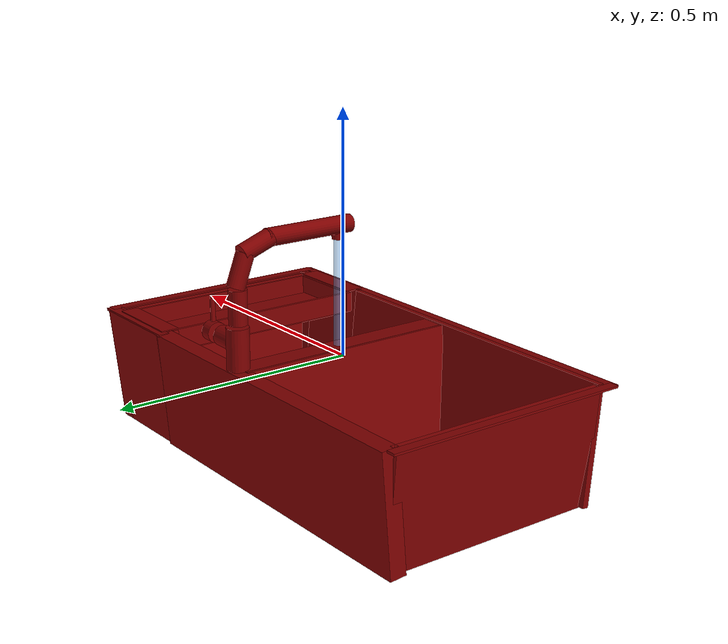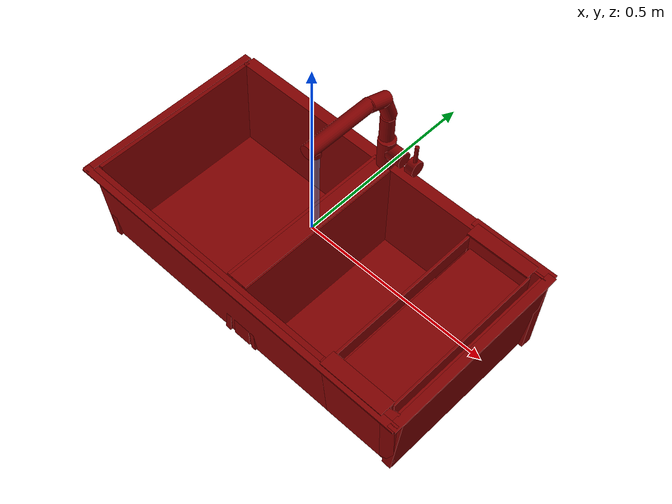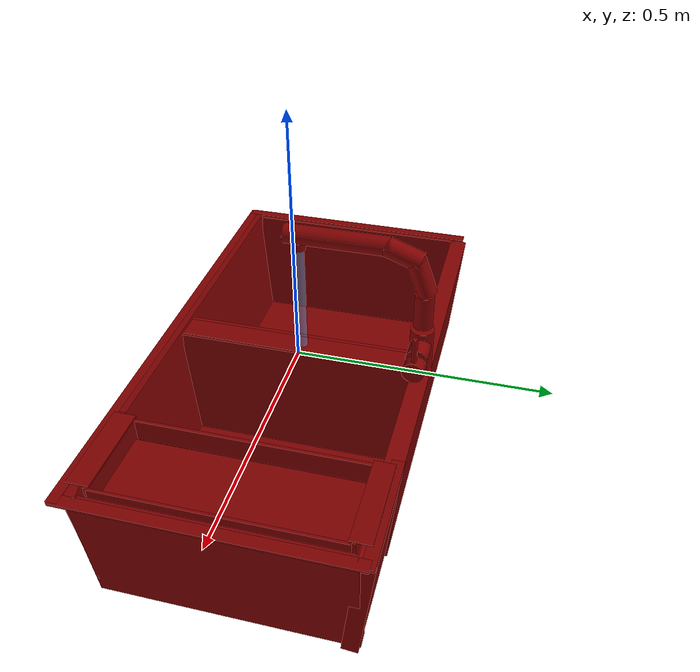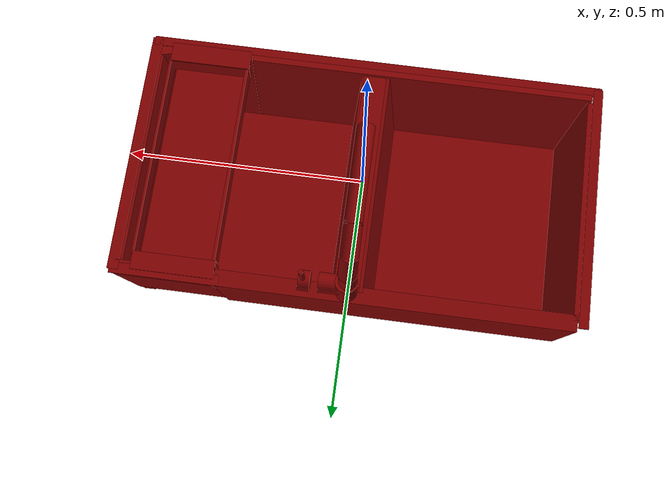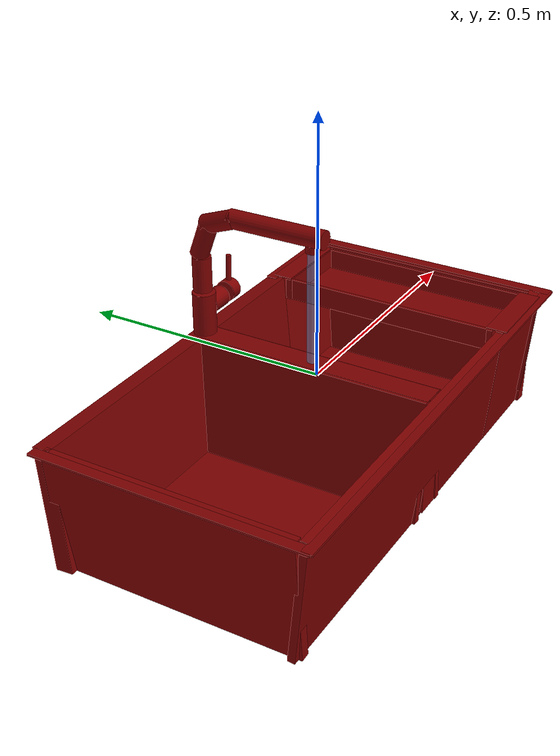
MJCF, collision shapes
<?xml version='1.0' encoding='UTF-8'?>
<mujoco model="model">
  <option timestep="0.002" gravity="0.0 0.0 -9.81"/>
  <compiler angle="radian"/>
  <asset>
    <mesh file="visuals/handle.obj" name="handle_vis"/>
    <mesh file="visuals/Body001.obj" name="Body001_vis"/>
    <mesh file="visuals/Container001.obj" name="Container001_vis"/>
    <mesh file="visuals/spout.obj" name="spout_vis"/>
    <texture file="visuals/T_BC001.png" name="Body001_material" type="2d"/>
    <material name="Body001_material" rgba="1 1 1 1.0" texture="Body001_material" shininess="0.4472135901451111" specular="2"/>
    <texture file="visuals/T_BC001.png" name="handle_material" type="2d"/>
    <material name="handle_material" rgba="1 1 1 1.0" texture="handle_material" shininess="0.4472135901451111" specular="2"/>
    <texture file="visuals/T_BC001.png" name="Container001_material" type="2d"/>
    <material name="Container001_material" rgba="1 1 1 1.0" texture="Container001_material" shininess="0.4472135901451111" specular="2"/>
    <texture file="visuals/T_BC001.png" name="spout_material" type="2d"/>
    <material name="spout_material" rgba="1 1 1 1.0" texture="spout_material" shininess="0.4472135901451111" specular="2"/>
  </asset>
  <default>
    <default class="visual">
      <geom conaffinity="0" contype="0" group="1" type="mesh"/>
    </default>
    <default class="collision">
      <geom group="0" rgba="0.5 0 0 0.5" solimp="0.998 0.998 0.001" solref="0.001 2"/>
    </default>
    <default class="spawn">
      <geom group="0" rgba="1 1 1 0.5" contype="0" conaffinity="0"/>
      <site group="0" rgba="1 1 1 0.5"/>
    </default>
    <default class="region">
      <geom group="1" conaffinity="0" contype="0" rgba="0 1 0 0"/>
    </default>
  </default>
  <worldbody>
    <body>
      <body name="object">
        <geom mesh="Body001_vis" type="mesh" solimp="0.998 0.998 0.001" solref="0.001 1" friction="0.95 0.3 0.1" class="visual" material="Body001_material"/>
        <geom class="collision" type="box" pos="-0.09733528 0.24096072 -0.09907246" size="0.3727695345878601 0.017321495339274406 0.12300393730401993" quat="0.9990482330322266 -0.04361938312649727 -0.0 0.0"/>
        <geom class="collision" type="box" pos="-0.09957722 -0.23244750 -0.09654858" size="0.37052756547927856 0.007144593633711338 0.12283506244421005" quat="0.9987403750419617 0.05017663910984993 0.0 0.0"/>
        <geom class="collision" type="box" pos="0.00122067 0.00568839 -0.09344882" size="0.024436986073851585 0.23936474323272705 0.11840010434389114" quat="1.0 0.0 0.0 0.0"/>
        <geom class="collision" type="box" pos="-0.45927498 0.00568839 -0.09785312" size="0.23936714231967926 0.009068615734577179 0.12248902767896652" quat="0.7063643336296082 0.03239481896162033 -0.032394833862781525 -0.7063643336296082"/>
        <geom class="collision" type="box" pos="0.46855363 0.00568839 -0.09967011" size="0.23936714231967926 0.012515637092292309 0.1218361184000969" quat="0.7064337730407715 -0.030843568965792656 0.030843574553728104 -0.7064337730407715"/>
        <geom class="collision" type="box" pos="-0.24464411 0.00071127 -0.21517713" size="0.19713054597377777 0.22159570455551147 0.005509738810360432" quat="1.0 0.0 0.0 0.0"/>
        <geom class="collision" type="box" pos="0.24296237 0.00071127 -0.21532134" size="0.19713057577610016 0.22159630060195923 0.005365563090890646" quat="1.0 0.0 0.0 0.0"/>
        <geom class="collision" type="box" pos="0.35772776 -0.23268879 -0.09557176" size="0.08612968027591705 0.007468333933502436 0.12335024029016495" quat="0.998741865158081 0.05014668405056 0.0 0.0"/>
        <geom class="collision" type="box" pos="0.37909644 0.24140606 -0.09870375" size="0.1026066467165947 0.015348780900239944 0.12289652973413467" quat="0.9984838366508484 -0.05504579097032547 -0.0 0.0"/>
        <geom class="collision" type="cylinder" pos="0.00231999 0.24574796 0.06544980" size="0.02263527922332287 0.04246450588107109" quat="1.0 0.0 0.0 0.0"/>
        <geom class="collision" type="box" pos="-0.03465817 0.00568839 -0.09685095" size="0.008054555393755436 0.239366352558136 0.122091144323349" quat="0.9988089203834534 0.0 0.04879241809248924 0.0"/>
        <geom class="collision" type="box" pos="0.03096597 0.00568839 -0.09618440" size="0.006487147882580757 0.239366352558136 0.1191689521074295" quat="0.9994208216667175 0.0 -0.03402908891439438 0.0"/>
        <geom class="collision" type="box" pos="0.00135944 0.00071127 -0.21735723" size="0.07363183796405792 0.2215971201658249 0.0020765289664268494" quat="1.0 0.0 0.0 0.0"/>
        <geom class="collision" type="cylinder" pos="-0.24127152 0.09563573 -0.26658598" size="0.025850877165794373 0.016773579642176628" quat="1.0 0.0 0.0 0.0"/>
        <geom class="collision" type="cylinder" pos="0.24527887 0.09563573 -0.26658595" size="0.025850877165794373 0.016773564741015434" quat="1.0 0.0 0.0 0.0"/>
        <geom class="collision" type="box" pos="0.45742267 -0.23183293 -0.08318435" size="0.017486345022916794 0.012020817957818508 0.10824259370565414" quat="0.992235541343689 0.046697646379470825 0.00944522861391306 0.1148858293890953"/>
        <geom class="collision" type="box" pos="0.00100972 -0.25945828 0.02275396" size="0.49104830622673035 0.01011129654943943 0.0021978430449962616" quat="1.0 0.0 0.0 0.0"/>
        <geom class="collision" type="box" pos="-0.48246855 -0.00231883 0.02275398" size="0.010111317038536072 0.26331180334091187 0.0021978600416332483" quat="1.0 0.0 0.0 0.0"/>
        <geom class="collision" type="box" pos="0.48481404 -0.00231883 0.02275398" size="0.011485403403639793 0.26331183314323425 0.0021978600416332483" quat="1.0 0.0 0.0 0.0"/>
        <geom class="collision" type="box" pos="-0.19974374 0.08528299 -0.23693524" size="0.001313244691118598 0.0054823001846671104 0.020730527117848396" quat="0.8857115507125854 0.09684006124734879 0.40027427673339844 -0.21428391337394714"/>
        <geom class="collision" type="box" pos="-0.20404023 0.07510709 -0.23693524" size="0.001313244691118598 0.0054823001846671104 0.020730527117848396" quat="0.8625609874725342 0.13283111155033112 0.3898119330406189 -0.29392358660697937"/>
        <geom class="collision" type="box" pos="-0.21218096 0.06572265 -0.23693524" size="0.001313244691118598 0.0054823001846671104 0.020730527117848396" quat="0.8553867936134338 0.14199042320251465 0.3865698277950287 -0.3141908645629883"/>
        <geom class="collision" type="box" pos="-0.21851263 0.05916485 -0.23693524" size="0.001313244691118598 0.0054823001846671104 0.020730527117848396" quat="0.823074221611023 0.17674292623996735 0.3719668984413147 -0.3910899758338928"/>
        <geom class="collision" type="box" pos="-0.23762072 0.05396383 -0.23693524" size="0.001313244691118598 0.0054823001846671104 0.020730527117848396" quat="0.6984293460845947 0.26451992988586426 0.31563693284988403 -0.5853195190429688"/>
        <geom class="collision" type="box" pos="-0.22642723 0.05532062 -0.23693524" size="0.001313244691118598 0.0054823001846671104 0.020730527117848396" quat="0.7480040788650513 0.23521433770656586 0.33804091811180115 -0.520473301410675"/>
        <geom class="collision" type="box" pos="-0.23183302 0.13735502 -0.23693524" size="0.001313244691118598 0.0054823001846671104 0.020730527117848396" quat="0.7815460562705994 -0.21177266538143158 0.35319942235946655 0.4686024785041809"/>
        <geom class="collision" type="box" pos="-0.22172635 0.13289804 -0.23693524" size="0.001313244691118598 0.0054823001846671104 0.020730527117848396" quat="0.8209136128425598 -0.1787833571434021 0.370990514755249 0.39560505747795105"/>
        <geom class="collision" type="box" pos="-0.21247191 0.12460986 -0.23693524" size="0.001313244691118598 0.0054823001846671104 0.020730527117848396" quat="0.8300180435180664 -0.169981449842453 0.37510499358177185 0.37612849473953247"/>
        <geom class="collision" type="box" pos="-0.20601512 0.11817522 -0.23693524" size="0.001313244691118598 0.0054823001846671104 0.020730527117848396" quat="0.860933244228363 -0.1349705010652542 0.38907670974731445 0.2986573278903961"/>
        <geom class="collision" type="box" pos="-0.20111709 0.09898723 -0.23693524" size="0.001313244691118598 0.0054823001846671104 0.020730527117848396" quat="0.9083518981933594 -0.03289860486984253 0.4105059504508972 0.07279683649539948"/>
        <geom class="collision" type="box" pos="-0.20229659 0.11020078 -0.23693524" size="0.001313244691118598 0.005482300650328398 0.020730527117848396" quat="0.8981937766075134 -0.0695001408457756 0.405915230512619 0.15378731489181519"/>
        <geom class="collision" type="box" pos="-0.28353671 0.10672168 -0.23693524" size="0.001313244691118598 0.0054823001846671104 0.020730527117848396" quat="0.21711264550685883 -0.39996278285980225 0.09811841696500778 0.8850224018096924"/>
        <geom class="collision" type="box" pos="-0.27917526 0.11686996 -0.23693524" size="0.001313244691118598 0.0054823001846671104 0.020730527117848396" quat="0.2966778874397278 -0.38938552141189575 0.1340758055448532 0.8616175651550293"/>
        <geom class="collision" type="box" pos="-0.27097473 0.12620216 -0.23693524" size="0.001313244691118598 0.0054823001846671104 0.020730527117848396" quat="0.31692206859588623 -0.3861141502857208 0.14322467148303986 0.8543787002563477"/>
        <geom class="collision" type="box" pos="-0.26460130 0.13271937 -0.23693524" size="0.0013132448075339198 0.0054823001846671104 0.020730527117848396" quat="0.3937176465988159 -0.37140023708343506 0.17793041467666626 0.8218205571174622"/>
        <geom class="collision" type="box" pos="-0.24546037 0.13779820 -0.23693524" size="0.0013132448075339198 0.0054823001846671104 0.020730527117848396" quat="0.5875478386878967 -0.3147902488708496 0.2655269205570221 0.6965559124946594"/>
        <geom class="collision" type="box" pos="-0.25666228 0.13651296 -0.23693524" size="0.001313244691118598 0.0054823001846671104 0.020730527117848396" quat="0.5228604674339294 -0.33728769421577454 0.23629315197467804 0.7463374137878418"/>
        <geom class="collision" type="box" pos="-0.25409684 0.05458775 -0.23693524" size="0.001313244691118598 0.0054823001846671104 0.020730527117848396" quat="0.4672184884548187 0.35357359051704407 0.21114712953567505 -0.7823742628097534"/>
        <geom class="collision" type="box" pos="-0.26418767 0.05908049 -0.23693524" size="0.001313244691118598 0.0054823001846671104 0.020730527117848396" quat="0.3941517472267151 0.37130630016326904 0.17812657356262207 -0.8216124176979065"/>
        <geom class="collision" type="box" pos="-0.27341268 0.06740139 -0.23693524" size="0.001313244691118598 0.0054823001846671104 0.020730527117848396" quat="0.37465900182724 0.3754052221775055 0.1693173348903656 -0.8306823372840881"/>
        <geom class="collision" type="box" pos="-0.27984670 0.07385883 -0.23693524" size="0.001313244691118598 0.0054823001846671104 0.020730527117848396" quat="0.297132670879364 0.3893146216869354 0.13428127765655518 -0.8614608645439148"/>
        <geom class="collision" type="box" pos="-0.28467677 0.09306404 -0.23693524" size="0.001313244691118598 0.0054823001846671104 0.020730527117848396" quat="0.0711892694234848 0.41056355834007263 0.03217211365699768 -0.9084792733192444"/>
        <geom class="collision" type="box" pos="-0.28353695 0.08184639 -0.23693524" size="0.001313244691118598 0.0054823001846671104 0.020730527117848396" quat="0.15219734609127045 0.4060375392436981 0.06878159195184708 -0.898464560508728"/>
        <geom class="collision" type="box" pos="-0.24519611 0.05192865 -0.23693524" size="0.001313244691118598 0.0054823001846671104 0.020730527117848396" quat="0.5495147109031677 0.3285198509693146 0.24833880364894867 -0.7269361615180969"/>
        <geom class="collision" type="box" pos="-0.23680789 0.14040779 -0.23693524" size="0.0013132448075339198 0.005482300650328398 0.020730527117848396" quat="0.6244293451309204 -0.29993945360183716 0.2821945548057556 0.6636946201324463"/>
        <geom class="collision" type="box" pos="-0.28602413 0.10152066 -0.23693524" size="0.0013132448075339198 0.0054823001846671104 0.020730527117848396" quat="0.039065562188625336 -0.4114435017108917 0.01765468530356884 0.9104264974594116"/>
        <geom class="collision" type="box" pos="-0.19838696 0.09082320 -0.23693524" size="0.0013132448075339198 0.0054823001846671104 0.020730527117848396" quat="0.9110049605369568 -0.009822927415370941 0.41170498728752136 0.02173585072159767"/>
        <geom class="collision" type="box" pos="0.28803825 0.08528299 -0.23693524" size="0.001313244691118598 0.0054823001846671104 0.020730527117848396" quat="0.8857115507125854 0.09684006124734879 0.40027427673339844 -0.21428391337394714"/>
        <geom class="collision" type="box" pos="0.28374174 0.07510709 -0.23693524" size="0.001313244691118598 0.0054823001846671104 0.020730527117848396" quat="0.8625609874725342 0.13283111155033112 0.3898119330406189 -0.29392358660697937"/>
        <geom class="collision" type="box" pos="0.27560102 0.06572265 -0.23693524" size="0.001313244691118598 0.0054823001846671104 0.020730527117848396" quat="0.8553867936134338 0.14199042320251465 0.3865698277950287 -0.3141908645629883"/>
        <geom class="collision" type="box" pos="0.26926934 0.05916485 -0.23693524" size="0.001313244691118598 0.0054823001846671104 0.020730527117848396" quat="0.823074221611023 0.17674292623996735 0.3719668984413147 -0.3910899758338928"/>
        <geom class="collision" type="box" pos="0.25016126 0.05396383 -0.23693524" size="0.001313244691118598 0.0054823001846671104 0.020730527117848396" quat="0.6984293460845947 0.26451992988586426 0.31563693284988403 -0.5853195190429688"/>
        <geom class="collision" type="box" pos="0.26135474 0.05532062 -0.23693524" size="0.001313244691118598 0.0054823001846671104 0.020730527117848396" quat="0.7480040788650513 0.23521433770656586 0.33804091811180115 -0.520473301410675"/>
        <geom class="collision" type="box" pos="0.25594896 0.13735502 -0.23693524" size="0.001313244691118598 0.0054823001846671104 0.020730527117848396" quat="0.7815460562705994 -0.21177266538143158 0.35319942235946655 0.4686024785041809"/>
        <geom class="collision" type="box" pos="0.26605564 0.13289804 -0.23693524" size="0.001313244691118598 0.0054823001846671104 0.020730527117848396" quat="0.8209136128425598 -0.1787833571434021 0.370990514755249 0.39560505747795105"/>
        <geom class="collision" type="box" pos="0.27531006 0.12460986 -0.23693524" size="0.001313244691118598 0.0054823001846671104 0.020730527117848396" quat="0.8300180435180664 -0.169981449842453 0.37510499358177185 0.37612849473953247"/>
        <geom class="collision" type="box" pos="0.28176686 0.11817522 -0.23693524" size="0.001313244691118598 0.0054823001846671104 0.020730527117848396" quat="0.860933244228363 -0.1349705010652542 0.38907670974731445 0.2986573278903961"/>
        <geom class="collision" type="box" pos="0.28666490 0.09898723 -0.23693524" size="0.001313244691118598 0.0054823001846671104 0.020730527117848396" quat="0.9083518981933594 -0.03289860486984253 0.4105059504508972 0.07279683649539948"/>
        <geom class="collision" type="box" pos="0.28548538 0.11020078 -0.23693524" size="0.001313244691118598 0.005482300650328398 0.020730527117848396" quat="0.8981937766075134 -0.0695001408457756 0.405915230512619 0.15378731489181519"/>
        <geom class="collision" type="box" pos="0.20424526 0.10672168 -0.23693524" size="0.001313244691118598 0.0054823001846671104 0.020730527117848396" quat="0.21711264550685883 -0.39996278285980225 0.09811841696500778 0.8850224018096924"/>
        <geom class="collision" type="box" pos="0.20860671 0.11686996 -0.23693524" size="0.001313244691118598 0.0054823001846671104 0.020730527117848396" quat="0.2966778874397278 -0.38938552141189575 0.1340758055448532 0.8616175651550293"/>
        <geom class="collision" type="box" pos="0.21680724 0.12620216 -0.23693524" size="0.001313244691118598 0.0054823001846671104 0.020730527117848396" quat="0.31692206859588623 -0.3861141502857208 0.14322467148303986 0.8543787002563477"/>
        <geom class="collision" type="box" pos="0.22318068 0.13271937 -0.23693524" size="0.0013132448075339198 0.0054823001846671104 0.020730527117848396" quat="0.3937176465988159 -0.37140023708343506 0.17793041467666626 0.8218205571174622"/>
        <geom class="collision" type="box" pos="0.24232161 0.13779820 -0.23693524" size="0.0013132448075339198 0.0054823001846671104 0.020730527117848396" quat="0.5875478386878967 -0.3147902488708496 0.2655269205570221 0.6965559124946594"/>
        <geom class="collision" type="box" pos="0.23111969 0.13651296 -0.23693524" size="0.001313244691118598 0.0054823001846671104 0.020730527117848396" quat="0.5228604674339294 -0.33728769421577454 0.23629315197467804 0.7463374137878418"/>
        <geom class="collision" type="box" pos="0.23368513 0.05458775 -0.23693524" size="0.001313244691118598 0.0054823001846671104 0.020730527117848396" quat="0.4672184884548187 0.35357359051704407 0.21114712953567505 -0.7823742628097534"/>
        <geom class="collision" type="box" pos="0.22359430 0.05908049 -0.23693524" size="0.001313244691118598 0.0054823001846671104 0.020730527117848396" quat="0.3941517472267151 0.37130630016326904 0.17812657356262207 -0.8216124176979065"/>
        <geom class="collision" type="box" pos="0.21436929 0.06740139 -0.23693524" size="0.001313244691118598 0.0054823001846671104 0.020730527117848396" quat="0.37465900182724 0.3754052221775055 0.1693173348903656 -0.8306823372840881"/>
        <geom class="collision" type="box" pos="0.20793527 0.07385883 -0.23693524" size="0.001313244691118598 0.0054823001846671104 0.020730527117848396" quat="0.297132670879364 0.3893146216869354 0.13428127765655518 -0.8614608645439148"/>
        <geom class="collision" type="box" pos="0.20310521 0.09306404 -0.23693524" size="0.001313244691118598 0.0054823001846671104 0.020730527117848396" quat="0.0711892694234848 0.41056355834007263 0.03217211365699768 -0.9084792733192444"/>
        <geom class="collision" type="box" pos="0.20424503 0.08184639 -0.23693524" size="0.001313244691118598 0.0054823001846671104 0.020730527117848396" quat="0.15219734609127045 0.4060375392436981 0.06878159195184708 -0.898464560508728"/>
        <geom class="collision" type="box" pos="0.24258586 0.05192865 -0.23693524" size="0.001313244691118598 0.0054823001846671104 0.020730527117848396" quat="0.5495147109031677 0.3285198509693146 0.24833880364894867 -0.7269361615180969"/>
        <geom class="collision" type="box" pos="0.25097408 0.14040779 -0.23693524" size="0.0013132448075339198 0.005482300650328398 0.020730527117848396" quat="0.6244293451309204 -0.29993945360183716 0.2821945548057556 0.6636946201324463"/>
        <geom class="collision" type="box" pos="0.20175784 0.10152066 -0.23693524" size="0.0013132448075339198 0.0054823001846671104 0.020730527117848396" quat="0.039065562188625336 -0.4114435017108917 0.01765468530356884 0.9104264974594116"/>
        <geom class="collision" type="box" pos="0.28939503 0.09082320 -0.23693524" size="0.0013132448075339198 0.0054823001846671104 0.020730527117848396" quat="0.9110049605369568 -0.009822927415370941 0.41170498728752136 0.02173585072159767"/>
        <geom class="collision" type="box" pos="0.37837088 0.25789027 0.02243633" size="0.11339457333087921 0.011575007811188698 0.0024187914095818996" quat="1.0 0.0 0.0 0.0"/>
        <geom class="collision" type="cylinder" pos="0.03632380 0.24574791 0.07660449" size="0.020545145496726036 0.0217522531747818" quat="0.5316309928894043 0.4662279486656189 0.5316310524940491 0.4662278890609741"/>
        <body name="handle">
          <joint axis="1.0 0.0 0.0" pos="0.08550788 0.24645792 0.07713067" limited="true" name="handle_temp_joint" type="hinge" range="-0.7853981633974483 0.7853981633974483" damping="0.5" frictionloss="1" armature="2"/>
          <joint axis="0.0 1.0 0.0" pos="0.08550788 0.24645792 0.07713067" limited="true" name="handle_joint" type="hinge" range="0 0.5" damping="0.5" frictionloss="1" armature="2"/>
          <geom mesh="handle_vis" type="mesh" solimp="0.998 0.998 0.001" solref="0.001 1" friction="0.95 0.3 0.1" class="visual" material="handle_material"/>
          <geom class="collision" type="cylinder" pos="0.08637506 0.24646502 0.07724116" size="0.020715434104204178 0.01182409655302763" quat="0.7071068286895752 -0.0 0.7071067690849304 0.0"/>
          <geom name="handle_main" class="collision" type="cylinder" pos="0.08928870 0.24646502 0.12141787" size="0.0051301149651408195 0.0271417498588562" quat="0.9999178647994995 0.0 0.012815705500543118 0.0"/>
        </body>
        <body name="Container001">
          <joint axis="0.0 0.0 1.0" pos="0.36610650 -0.00004191 0.00191922" limited="true" name="Container001_joint" range="0.0 0.1" type="slide" damping="1" frictionloss="1" armature=".01" stiffness="0.05"/>
          <geom mesh="Container001_vis" type="mesh" solimp="0.998 0.998 0.001" solref="0.001 1" friction="0.95 0.3 0.1" class="visual" material="Container001_material"/>
          <geom class="collision" type="box" pos="0.36711859 0.00071127 -0.02197656" size="0.07616298645734787 0.22159786522388458 0.005960702430456877" quat="1.0 0.0 0.0 0.0"/>
          <geom class="collision" type="box" pos="0.28203684 0.00071127 0.00104703" size="0.0032559437677264214 0.2215978503227234 0.02203122153878212" quat="1.0 0.0 0.0 0.0"/>
          <geom class="collision" type="box" pos="0.45041778 0.00071127 0.00104703" size="0.0027486684266477823 0.22159895300865173 0.022031215950846672" quat="1.0 0.0 0.0 0.0"/>
          <geom class="collision" type="box" pos="0.36284112 -0.22194418 0.00104703" size="0.08651956170797348 0.0059606642462313175 0.022031307220458984" quat="1.0 0.0 0.0 0.0"/>
          <geom class="collision" type="box" pos="0.36284112 0.22351835 0.00104703" size="0.08651956170797348 0.0059606642462313175 0.02203129231929779" quat="1.0 0.0 0.0 0.0"/>
          <geom class="collision" type="box" pos="0.36284112 0.23729487 0.02605785" size="0.08651945739984512 0.019438279792666435 0.0010807234793901443" quat="1.0 0.0 0.0 0.0"/>
          <geom class="collision" type="box" pos="0.36284118 -0.23633433 0.02723291" size="0.08651956170797348 0.02102767676115036 0.0012742563849315047" quat="1.0 0.0 0.0 0.0"/>
        </body>
        <body name="spout">
          <joint axis="0.0 0.0 1.0" pos="0.00087071 0.24284998 0.25706225" limited="true" name="spout_joint" range="-0.9599310885968813 0.9599310885968813" type="hinge" damping="10"/>
          <site type="cylinder" rgba="0.5 0.75 1 0.5" size="0.009561539627611637 0.23631127178668976" pos="0.00081559 0.01067994 0.01993586" name="water"/>
          <geom mesh="spout_vis" type="mesh" solimp="0.998 0.998 0.001" solref="0.001 1" friction="0.95 0.3 0.1" class="visual" material="spout_material"/>
          <geom class="collision" type="cylinder" pos="-0.00043836 0.24562993 0.14825364" size="0.018415158614516258 0.03454742580652237" quat="1.0 0.0 0.0 0.0"/>
          <geom class="collision" type="cylinder" pos="-0.00043836 0.08187305 0.27184271" size="0.018038813024759293 0.09722638130187988" quat="0.7071068286895752 -0.7071067690849304 -0.0 0.0" name="spout_main"/>
          <geom class="collision" type="cylinder" pos="-0.00043836 0.23817227 0.21823973" size="0.018415158614516258 0.03454742580652237" quat="0.9848077297210693 0.17364826798439026 0.0 0.0"/>
          <geom class="collision" type="cylinder" pos="-0.00043836 0.20244489 0.26075979" size="0.018415158614516258 0.03454742580652237" quat="0.8191519975662231 0.5735765099525452 0.0 0.0"/>
          <geom class="collision" type="cylinder" pos="0.00089180 0.01061863 0.25100961" size="0.012974850833415985 0.007570096757262945" quat="1.0 0.0 0.0 0.0"/>
        </body>
        <geom class="region" name="reg_basin_left" type="box" pos="-0.24677453500000002 -1.2965000000003668e-05 -0.090257615" size="0.187743375 0.208902115 0.11499904500000001"/>
        <geom class="region" name="reg_basin_right" type="box" pos="0.16188746499999998 0.0011258900000000044 -0.09052758" size="0.11191285499999999 0.20806016 0.11500249000000001"/>
        <geom class="region" name="reg_main" type="box" pos="-1.150000000227358e-07 5.000000000143778e-08 -0.129203865" size="0.497299565 0.27117114 0.15515567500000002"/>
      </body>
    </body>
  </worldbody>
  <actuator>
    <motor name="handle_joint_actuator" joint="handle_joint" gear="10"/>
    <motor name="handle_temp_joint_actuator" joint="handle_temp_joint" gear="10"/>
    <motor name="Container001_joint_actuator" joint="Container001_joint" gear="10"/>
    <motor name="spout_joint_actuator" joint="spout_joint" gear="10"/>
  </actuator>
</mujoco>
